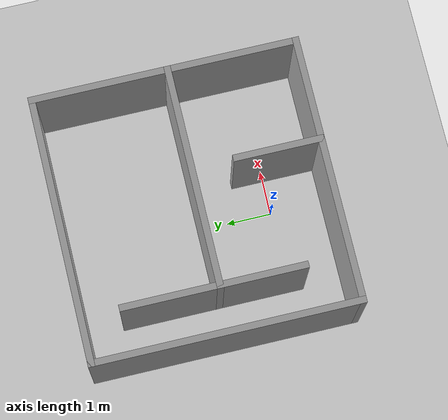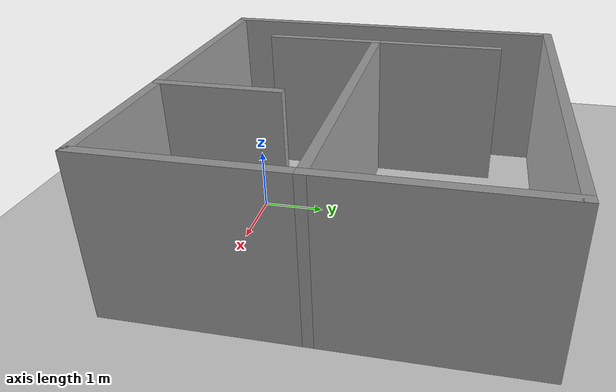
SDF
<sdf version="1.7">
 <world name="default">
  <model name="ground_plane">
   <static>1</static>
   <link name="link">
    <collision name="collision">
     <geometry><plane><normal>0 0 1</normal><size>100 100</size></plane></geometry>
     <surface><friction><ode><mu>100</mu><mu2>50</mu2></ode></friction></surface>
    </collision>
    <visual name="visual">
     <cast_shadows>0</cast_shadows>
     <geometry><plane><normal>0 0 1</normal><size>100 100</size></plane></geometry>
     <material>
      <script><uri>file://media/materials/scripts/gazebo.material</uri><name>Gazebo/Grey</name></script>
     </material>
    </visual>
   </link>
  </model>
  <light name="sun" type="directional">
   <pose>0 0 10 0 -0 0</pose>
   <diffuse>0.8 0.8 0.8 1</diffuse>
   <specular>0.2 0.2 0.2 1</specular>
   <attenuation>
    <range>1000</range>
    <constant>0.9</constant>
    <linear>0.01</linear>
    <quadratic>0.001</quadratic>
   </attenuation>
   <direction>-0.5 0.1 -0.9</direction>
   <spot><inner_angle>0</inner_angle><outer_angle>0</outer_angle><falloff>0</falloff></spot>
  </light>
  <scene><shadows>0</shadows><ambient>0.4 0.4 0.4 1</ambient><background>0.7 0.7 0.7 1</background></scene>
  <physics type="ode">
   <real_time_update_rate>1000</real_time_update_rate>
   <max_step_size>0.001</max_step_size>
   <real_time_factor>1</real_time_factor>
   <ode>
    <solver>
     <type>quick</type>
     <iters>150</iters>
     <precon_iters>0</precon_iters>
     <sor>1.4</sor>
     <use_dynamic_moi_rescaling>1</use_dynamic_moi_rescaling>
    </solver>
    <constraints>
     <cfm>1e-05</cfm>
     <erp>0.2</erp>
     <contact_max_correcting_vel>2000</contact_max_correcting_vel>
     <contact_surface_layer>0.01</contact_surface_layer>
    </constraints>
   </ode>
  </physics>
  <gravity>0 0 -9.8</gravity>
  <magnetic_field>6e-06 2.3e-05 -4.2e-05</magnetic_field>
  <atmosphere type="adiabatic"/>
  <audio><device>default</device></audio>
  <spherical_coordinates>
   <surface_model>EARTH_WGS84</surface_model>
   <latitude_deg>0</latitude_deg>
   <longitude_deg>0</longitude_deg>
   <elevation>0</elevation>
   <heading_deg>0</heading_deg>
  </spherical_coordinates>
  <model name="my_building_0">
   <pose>0.168201 1.70049 0 0 -0 0</pose>
   <link name="Wall_10">
    <collision name="Wall_10_Collision">
     <geometry><box><size>6 0.15 2.5</size></box></geometry>
     <pose>0 0 1.25 0 -0 0</pose>
    </collision>
    <visual name="Wall_10_Visual">
     <pose>0 0 1.25 0 -0 0</pose>
     <geometry><box><size>6 0.15 2.5</size></box></geometry>
     <material>
      <script><uri>file://media/materials/scripts/gazebo.material</uri><name>Gazebo/Grey</name></script>
      <ambient>1 1 1 1</ambient>
     </material>
     <meta><layer>0</layer></meta>
    </visual>
    <pose>-0 2.925 0 0 -0 0</pose>
   </link>
   <link name="Wall_11">
    <collision name="Wall_11_Collision">
     <geometry><box><size>3.15 0.15 2.5</size></box></geometry>
     <pose>0 0 1.25 0 -0 0</pose>
    </collision>
    <visual name="Wall_11_Visual">
     <pose>0 0 1.25 0 -0 0</pose>
     <geometry><box><size>3.15 0.15 2.5</size></box></geometry>
     <material>
      <script><uri>file://media/materials/scripts/gazebo.material</uri><name>Gazebo/Grey</name></script>
      <ambient>1 1 1 1</ambient>
     </material>
     <meta><layer>0</layer></meta>
    </visual>
    <pose>2.925 1.425 0 0 -0 -1.5708</pose>
   </link>
   <link name="Wall_13">
    <collision name="Wall_13_Collision">
     <geometry><box><size>2 0.15 2.5</size></box></geometry>
     <pose>0 0 1.25 0 -0 0</pose>
    </collision>
    <visual name="Wall_13_Visual">
     <pose>0 0 1.25 0 -0 0</pose>
     <geometry><box><size>2 0.15 2.5</size></box></geometry>
     <material>
      <script><uri>file://media/materials/scripts/gazebo.material</uri><name>Gazebo/Grey</name></script>
      <ambient>1 1 1 1</ambient>
     </material>
     <meta><layer>0</layer></meta>
    </visual>
    <pose>0.675214 -1.98575 0 0 -0 1.5708</pose>
   </link>
   <link name="Wall_15">
    <collision name="Wall_15_Collision">
     <geometry><box><size>2.25 0.15 2.5</size></box></geometry>
     <pose>0 0 1.25 0 -0 0</pose>
    </collision>
    <visual name="Wall_15_Visual">
     <pose>0 0 1.25 0 -0 0</pose>
     <geometry><box><size>2.25 0.15 2.5</size></box></geometry>
     <material>
      <script><uri>file://media/materials/scripts/gazebo.material</uri><name>Gazebo/Grey</name></script>
      <ambient>1 1 1 1</ambient>
     </material>
     <meta><layer>0</layer></meta>
    </visual>
    <pose>-1.925 0.975 0 0 -0 1.5708</pose>
   </link>
   <link name="Wall_17">
    <collision name="Wall_17_Collision">
     <geometry><box><size>2 0.15 2.5</size></box></geometry>
     <pose>0 0 1.25 0 -0 0</pose>
    </collision>
    <visual name="Wall_17_Visual">
     <pose>0 0 1.25 0 -0 0</pose>
     <geometry><box><size>2 0.15 2.5</size></box></geometry>
     <material>
      <script><uri>file://media/materials/scripts/gazebo.material</uri><name>Gazebo/Grey</name></script>
      <ambient>1 1 1 1</ambient>
     </material>
     <meta><layer>0</layer></meta>
    </visual>
    <pose>-1.925 -1 0 0 -0 -1.5708</pose>
   </link>
   <link name="Wall_4">
    <collision name="Wall_4_Collision">
     <geometry><box><size>6 0.15 2.5</size></box></geometry>
     <pose>0 0 1.25 0 -0 0</pose>
    </collision>
    <visual name="Wall_4_Visual">
     <pose>0 0 1.25 0 -0 0</pose>
     <geometry><box><size>6 0.15 2.5</size></box></geometry>
     <material>
      <script><uri>file://media/materials/scripts/gazebo.material</uri><name>Gazebo/Grey</name></script>
      <ambient>1 1 1 1</ambient>
     </material>
     <meta><layer>0</layer></meta>
    </visual>
    <pose>-0 -2.925 0 0 -0 0</pose>
   </link>
   <link name="Wall_5">
    <collision name="Wall_5_Collision">
     <geometry><box><size>3 0.15 2.5</size></box></geometry>
     <pose>0 0 1.25 0 -0 0</pose>
    </collision>
    <visual name="Wall_5_Visual">
     <pose>0 0 1.25 0 -0 0</pose>
     <geometry><box><size>3 0.15 2.5</size></box></geometry>
     <material>
      <script><uri>file://media/materials/scripts/gazebo.material</uri><name>Gazebo/Grey</name></script>
      <ambient>1 1 1 1</ambient>
     </material>
     <meta><layer>0</layer></meta>
    </visual>
    <pose>2.925 -1.5 0 0 -0 1.5708</pose>
   </link>
   <link name="Wall_6">
    <collision name="Wall_6_Collision">
     <geometry><box><size>5 0.15 2.5</size></box></geometry>
     <pose>0 0 1.25 0 -0 0</pose>
    </collision>
    <visual name="Wall_6_Visual">
     <pose>0 0 1.25 0 -0 0</pose>
     <geometry><box><size>5 0.15 2.5</size></box></geometry>
     <material>
      <script><uri>file://media/materials/scripts/gazebo.material</uri><name>Gazebo/Grey</name></script>
      <ambient>1 1 1 1</ambient>
     </material>
     <meta><layer>0</layer></meta>
    </visual>
    <pose>0.5 -0.075 0 0 -0 3.14159</pose>
   </link>
   <link name="Wall_9">
    <collision name="Wall_9_Collision">
     <geometry><box><size>6 0.15 2.5</size></box></geometry>
     <pose>0 0 1.25 0 -0 0</pose>
    </collision>
    <visual name="Wall_9_Visual">
     <pose>0 0 1.25 0 -0 0</pose>
     <geometry><box><size>6 0.15 2.5</size></box></geometry>
     <material>
      <script><uri>file://media/materials/scripts/gazebo.material</uri><name>Gazebo/Grey</name></script>
      <ambient>1 1 1 1</ambient>
     </material>
     <meta><layer>0</layer></meta>
    </visual>
    <pose>-2.925 0 0 0 -0 1.5708</pose>
   </link>
   <static>1</static>
  </model>
 </world>
</sdf>
